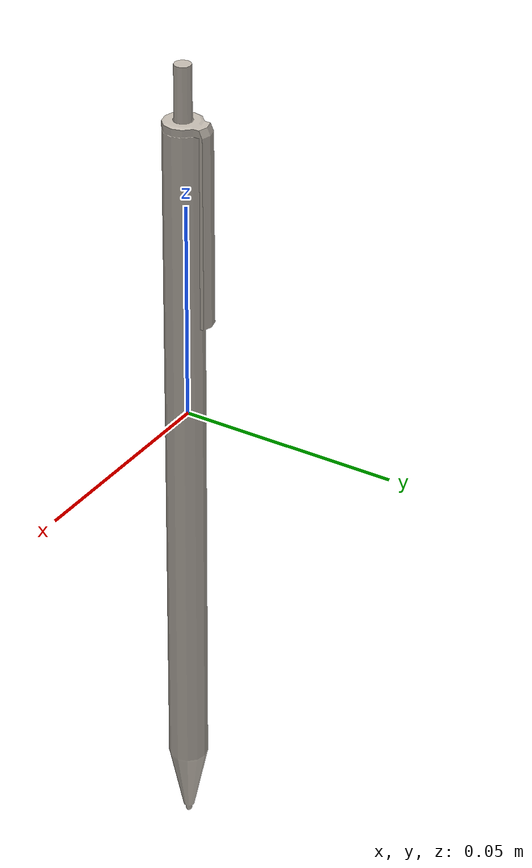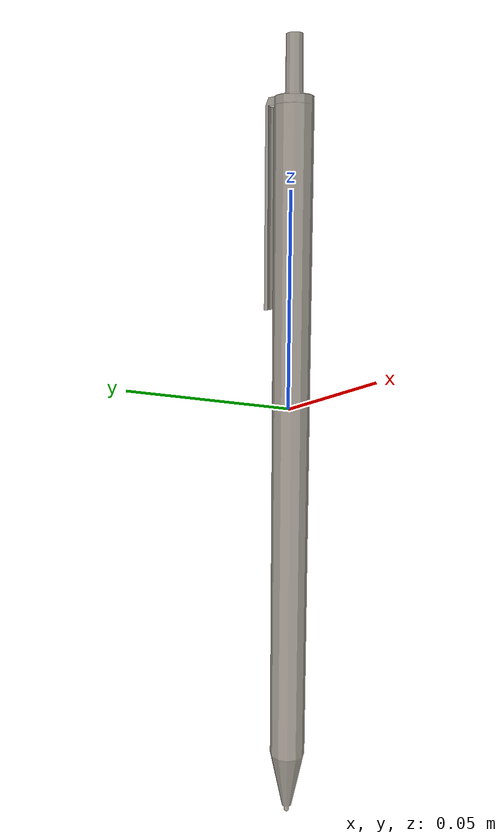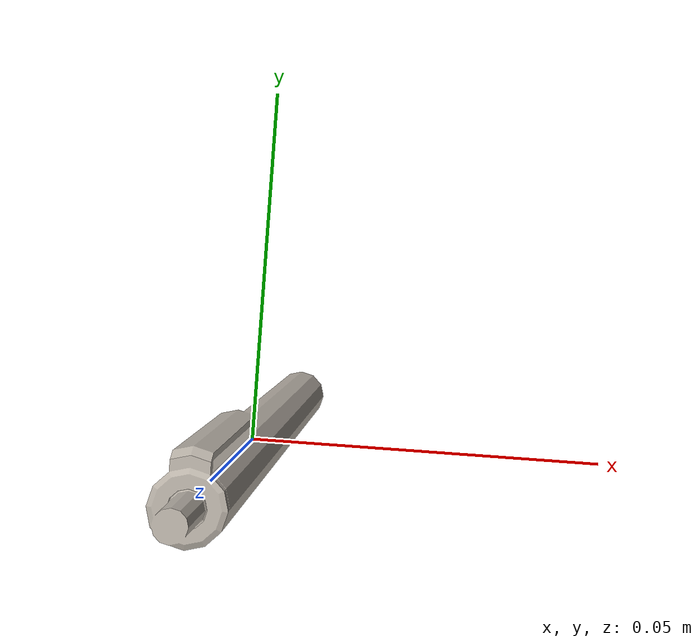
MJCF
<mujoco model="Pen_4">
  <compiler autolimits="true" boundmass="0" angle="radian"/>
  <default>
    <default class="/">
      <default class="__VISUAL_MJT__">
        <geom contype="0" conaffinity="0" group="0"/>
      </default>
      <default class="__STRUCTURAL_MJT__">
        <geom contype="8" conaffinity="15" group="4" friction="0.90000000000000002 0.90000000000000002 0.001" solref="0.025000000000000001 1" solimp="0.998 0.998 0.001"/>
      </default>
      <default class="__DYNAMIC_MJT__">
        <geom contype="1" conaffinity="15" group="4" friction="0.90000000000000002 0.90000000000000002 0.001" solref="0.025000000000000001 1" solimp="0.998 0.998 0.001"/>
      </default>
    </default>
  </default>
  <asset>
    <texture name="PensPencils_DefaultMaterial_AlbedoTransparency" type="2d" file="PensPencils_DefaultMaterial_AlbedoTransparency.png"/>
    <material name="material_PensPencils_DefaultMaterial_AlbedoTransparency" class="/" texture="PensPencils_DefaultMaterial_AlbedoTransparency" specular="0.5" shininess="0.5" rgba="1 1 1 1"/>
    <mesh name="Pen_4_Cylinder.226" class="/" file="Pen_4_Cylinder.226/Pen_4_Cylinder.226.obj" scale="1.0000002384185791 1 1"/>
  </asset>
  <worldbody>
    <body name="Pen_4">
      <joint name="Pen_4_free" class="/" type="free" pos="0 0 0" axis="0 0 1" stiffness="0" range="0 0" armature="0" damping="0.10000000000000001" frictionloss="0"/>
      <body name="Pen_4_Cylinder.226" pos="-0 0 -0.0064799999999999996" quat="0.5 -0.5 -0.5 -0.5">
        <geom name="Pen_4_Cylinder.226" class="__VISUAL_MJT__" type="mesh" material="material_PensPencils_DefaultMaterial_AlbedoTransparency" shellinertia="false" mesh="Pen_4_Cylinder.226"/>
        <geom name="Pen_4_Cylinder.226_PrimitiveCollider_0" class="__DYNAMIC_MJT__" type="capsule" size="0.0056448532268404961 0.094274123199284077" rgba="0 1 0 1" pos="-0.0064800102263689041 -3.6306445849731972e-08 1.8160790205001831e-08" quat="1.9809017620144125e-06 -0.70710779270735336 -1.9809017619554226e-06 -0.70710576965874539"/>
      </body>
    </body>
  </worldbody>
</mujoco>
